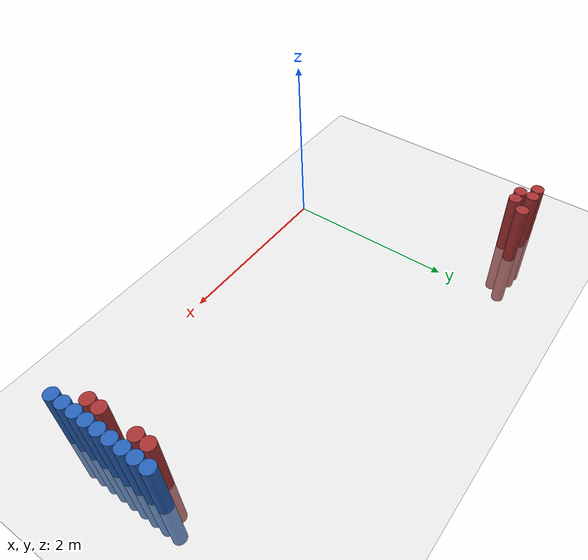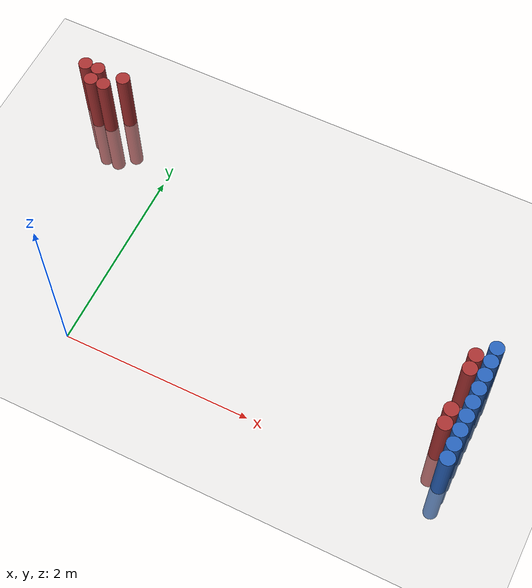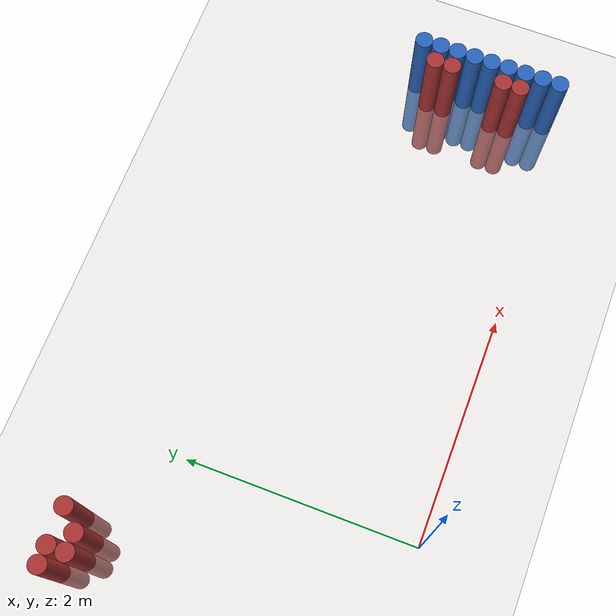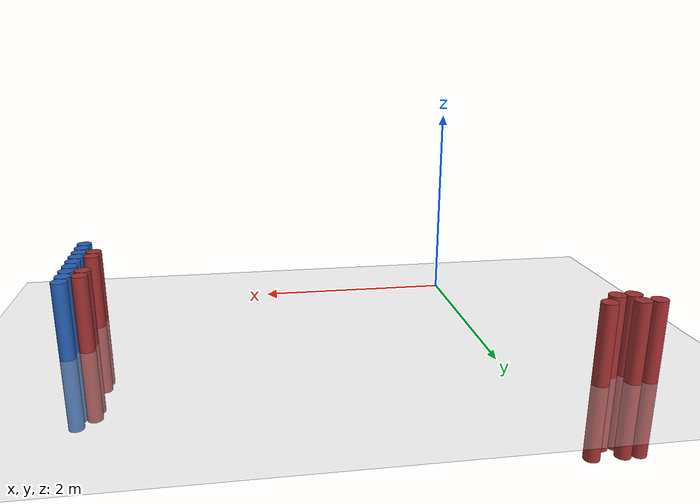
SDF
<sdf version="1.6">
 <world name="default">
  <model name="ground_plane">
   <static>1</static>
   <link name="link">
    <collision name="collision">
     <geometry><plane><normal>0 0 1</normal><size>100 100</size></plane></geometry>
     <surface><friction><ode><mu>100</mu><mu2>50</mu2></ode></friction></surface>
    </collision>
    <visual name="visual">
     <cast_shadows>0</cast_shadows>
     <geometry><plane><normal>0 0 1</normal><size>100 100</size></plane></geometry>
     <material>
      <script><uri>file://media/materials/scripts/gazebo.material</uri><name>Gazebo/Grey</name></script>
     </material>
    </visual>
   </link>
  </model>
  <model name="unit_cylinder_118">
   <static>1</static>
   <pose>3.925000 0.325000 0.000000 0.000000 0.000000 0.000000</pose>
   <link name="link">
    <inertial>
     <mass>1</mass>
     <inertia><ixx>0.145833</ixx><ixy>0</ixy><ixz>0</ixz><iyy>0.145833</iyy><iyz>0</iyz><izz>0.125</izz></inertia>
    </inertial>
    <collision name="collision">
     <geometry><cylinder><radius>0.075000</radius><length>1.5</length></cylinder></geometry>
    </collision>
    <visual name="visual">
     <geometry><cylinder><radius>0.075000</radius><length>1.5</length></cylinder></geometry>
     <material>
      <ambient>0.152000 0.379000 0.720000 1</ambient>
      <diffuse>0.152000 0.379000 0.720000 1</diffuse>
     </material>
     <material>
      <script><name>Gazebo/Grey</name><uri>file://media/materials/scripts/gazebo.material</uri></script>
     </material>
    </visual>
   </link>
  </model>
  <model name="unit_cylinder_120">
   <static>1</static>
   <pose>3.925000 0.475000 0.000000 0.000000 0.000000 0.000000</pose>
   <link name="link">
    <inertial>
     <mass>1</mass>
     <inertia><ixx>0.145833</ixx><ixy>0</ixy><ixz>0</ixz><iyy>0.145833</iyy><iyz>0</iyz><izz>0.125</izz></inertia>
    </inertial>
    <collision name="collision">
     <geometry><cylinder><radius>0.075000</radius><length>1.5</length></cylinder></geometry>
    </collision>
    <visual name="visual">
     <geometry><cylinder><radius>0.075000</radius><length>1.5</length></cylinder></geometry>
     <material>
      <ambient>0.152000 0.379000 0.720000 1</ambient>
      <diffuse>0.152000 0.379000 0.720000 1</diffuse>
     </material>
     <material>
      <script><name>Gazebo/Grey</name><uri>file://media/materials/scripts/gazebo.material</uri></script>
     </material>
    </visual>
   </link>
  </model>
  <model name="unit_cylinder_122">
   <static>1</static>
   <pose>3.925000 0.625000 0.000000 0.000000 0.000000 0.000000</pose>
   <link name="link">
    <inertial>
     <mass>1</mass>
     <inertia><ixx>0.145833</ixx><ixy>0</ixy><ixz>0</ixz><iyy>0.145833</iyy><iyz>0</iyz><izz>0.125</izz></inertia>
    </inertial>
    <collision name="collision">
     <geometry><cylinder><radius>0.075000</radius><length>1.5</length></cylinder></geometry>
    </collision>
    <visual name="visual">
     <geometry><cylinder><radius>0.075000</radius><length>1.5</length></cylinder></geometry>
     <material>
      <ambient>0.152000 0.379000 0.720000 1</ambient>
      <diffuse>0.152000 0.379000 0.720000 1</diffuse>
     </material>
     <material>
      <script><name>Gazebo/Grey</name><uri>file://media/materials/scripts/gazebo.material</uri></script>
     </material>
    </visual>
   </link>
  </model>
  <model name="unit_cylinder_124">
   <static>1</static>
   <pose>3.925000 0.775000 0.000000 0.000000 0.000000 0.000000</pose>
   <link name="link">
    <inertial>
     <mass>1</mass>
     <inertia><ixx>0.145833</ixx><ixy>0</ixy><ixz>0</ixz><iyy>0.145833</iyy><iyz>0</iyz><izz>0.125</izz></inertia>
    </inertial>
    <collision name="collision">
     <geometry><cylinder><radius>0.075000</radius><length>1.5</length></cylinder></geometry>
    </collision>
    <visual name="visual">
     <geometry><cylinder><radius>0.075000</radius><length>1.5</length></cylinder></geometry>
     <material>
      <ambient>0.152000 0.379000 0.720000 1</ambient>
      <diffuse>0.152000 0.379000 0.720000 1</diffuse>
     </material>
     <material>
      <script><name>Gazebo/Grey</name><uri>file://media/materials/scripts/gazebo.material</uri></script>
     </material>
    </visual>
   </link>
  </model>
  <model name="unit_cylinder_126">
   <static>1</static>
   <pose>3.925000 0.925000 0.000000 0.000000 0.000000 0.000000</pose>
   <link name="link">
    <inertial>
     <mass>1</mass>
     <inertia><ixx>0.145833</ixx><ixy>0</ixy><ixz>0</ixz><iyy>0.145833</iyy><iyz>0</iyz><izz>0.125</izz></inertia>
    </inertial>
    <collision name="collision">
     <geometry><cylinder><radius>0.075000</radius><length>1.5</length></cylinder></geometry>
    </collision>
    <visual name="visual">
     <geometry><cylinder><radius>0.075000</radius><length>1.5</length></cylinder></geometry>
     <material>
      <ambient>0.152000 0.379000 0.720000 1</ambient>
      <diffuse>0.152000 0.379000 0.720000 1</diffuse>
     </material>
     <material>
      <script><name>Gazebo/Grey</name><uri>file://media/materials/scripts/gazebo.material</uri></script>
     </material>
    </visual>
   </link>
  </model>
  <model name="unit_cylinder_128">
   <static>1</static>
   <pose>3.925000 1.075000 0.000000 0.000000 0.000000 0.000000</pose>
   <link name="link">
    <inertial>
     <mass>1</mass>
     <inertia><ixx>0.145833</ixx><ixy>0</ixy><ixz>0</ixz><iyy>0.145833</iyy><iyz>0</iyz><izz>0.125</izz></inertia>
    </inertial>
    <collision name="collision">
     <geometry><cylinder><radius>0.075000</radius><length>1.5</length></cylinder></geometry>
    </collision>
    <visual name="visual">
     <geometry><cylinder><radius>0.075000</radius><length>1.5</length></cylinder></geometry>
     <material>
      <ambient>0.152000 0.379000 0.720000 1</ambient>
      <diffuse>0.152000 0.379000 0.720000 1</diffuse>
     </material>
     <material>
      <script><name>Gazebo/Grey</name><uri>file://media/materials/scripts/gazebo.material</uri></script>
     </material>
    </visual>
   </link>
  </model>
  <model name="unit_cylinder_130">
   <static>1</static>
   <pose>3.925000 1.225000 0.000000 0.000000 0.000000 0.000000</pose>
   <link name="link">
    <inertial>
     <mass>1</mass>
     <inertia><ixx>0.145833</ixx><ixy>0</ixy><ixz>0</ixz><iyy>0.145833</iyy><iyz>0</iyz><izz>0.125</izz></inertia>
    </inertial>
    <collision name="collision">
     <geometry><cylinder><radius>0.075000</radius><length>1.5</length></cylinder></geometry>
    </collision>
    <visual name="visual">
     <geometry><cylinder><radius>0.075000</radius><length>1.5</length></cylinder></geometry>
     <material>
      <ambient>0.152000 0.379000 0.720000 1</ambient>
      <diffuse>0.152000 0.379000 0.720000 1</diffuse>
     </material>
     <material>
      <script><name>Gazebo/Grey</name><uri>file://media/materials/scripts/gazebo.material</uri></script>
     </material>
    </visual>
   </link>
  </model>
  <model name="unit_cylinder_132">
   <static>1</static>
   <pose>3.925000 1.375000 0.000000 0.000000 0.000000 0.000000</pose>
   <link name="link">
    <inertial>
     <mass>1</mass>
     <inertia><ixx>0.145833</ixx><ixy>0</ixy><ixz>0</ixz><iyy>0.145833</iyy><iyz>0</iyz><izz>0.125</izz></inertia>
    </inertial>
    <collision name="collision">
     <geometry><cylinder><radius>0.075000</radius><length>1.5</length></cylinder></geometry>
    </collision>
    <visual name="visual">
     <geometry><cylinder><radius>0.075000</radius><length>1.5</length></cylinder></geometry>
     <material>
      <ambient>0.152000 0.379000 0.720000 1</ambient>
      <diffuse>0.152000 0.379000 0.720000 1</diffuse>
     </material>
     <material>
      <script><name>Gazebo/Grey</name><uri>file://media/materials/scripts/gazebo.material</uri></script>
     </material>
    </visual>
   </link>
  </model>
  <model name="unit_cylinder_284">
   <static>1</static>
   <pose>-1.175000 2.575000 0.000000 0.000000 0.000000 0.000000</pose>
   <link name="link">
    <inertial>
     <mass>1</mass>
     <inertia><ixx>0.145833</ixx><ixy>0</ixy><ixz>0</ixz><iyy>0.145833</iyy><iyz>0</iyz><izz>0.125</izz></inertia>
    </inertial>
    <collision name="collision">
     <geometry><cylinder><radius>0.075000</radius><length>1.5</length></cylinder></geometry>
    </collision>
    <visual name="visual">
     <geometry><cylinder><radius>0.075000</radius><length>1.5</length></cylinder></geometry>
     <material>
      <ambient>0.648000 0.192000 0.192000 1</ambient>
      <diffuse>0.648000 0.192000 0.192000 1</diffuse>
     </material>
     <material>
      <script><name>Gazebo/Grey</name><uri>file://media/materials/scripts/gazebo.material</uri></script>
     </material>
    </visual>
   </link>
  </model>
  <model name="unit_cylinder_285">
   <static>1</static>
   <pose>-1.025000 2.425000 0.000000 0.000000 0.000000 0.000000</pose>
   <link name="link">
    <inertial>
     <mass>1</mass>
     <inertia><ixx>0.145833</ixx><ixy>0</ixy><ixz>0</ixz><iyy>0.145833</iyy><iyz>0</iyz><izz>0.125</izz></inertia>
    </inertial>
    <collision name="collision">
     <geometry><cylinder><radius>0.075000</radius><length>1.5</length></cylinder></geometry>
    </collision>
    <visual name="visual">
     <geometry><cylinder><radius>0.075000</radius><length>1.5</length></cylinder></geometry>
     <material>
      <ambient>0.648000 0.192000 0.192000 1</ambient>
      <diffuse>0.648000 0.192000 0.192000 1</diffuse>
     </material>
     <material>
      <script><name>Gazebo/Grey</name><uri>file://media/materials/scripts/gazebo.material</uri></script>
     </material>
    </visual>
   </link>
  </model>
  <model name="unit_cylinder_286">
   <static>1</static>
   <pose>-1.025000 2.575000 0.000000 0.000000 0.000000 0.000000</pose>
   <link name="link">
    <inertial>
     <mass>1</mass>
     <inertia><ixx>0.145833</ixx><ixy>0</ixy><ixz>0</ixz><iyy>0.145833</iyy><iyz>0</iyz><izz>0.125</izz></inertia>
    </inertial>
    <collision name="collision">
     <geometry><cylinder><radius>0.075000</radius><length>1.5</length></cylinder></geometry>
    </collision>
    <visual name="visual">
     <geometry><cylinder><radius>0.075000</radius><length>1.5</length></cylinder></geometry>
     <material>
      <ambient>0.648000 0.192000 0.192000 1</ambient>
      <diffuse>0.648000 0.192000 0.192000 1</diffuse>
     </material>
     <material>
      <script><name>Gazebo/Grey</name><uri>file://media/materials/scripts/gazebo.material</uri></script>
     </material>
    </visual>
   </link>
  </model>
  <model name="unit_cylinder_287">
   <static>1</static>
   <pose>-0.875000 2.425000 0.000000 0.000000 0.000000 0.000000</pose>
   <link name="link">
    <inertial>
     <mass>1</mass>
     <inertia><ixx>0.145833</ixx><ixy>0</ixy><ixz>0</ixz><iyy>0.145833</iyy><iyz>0</iyz><izz>0.125</izz></inertia>
    </inertial>
    <collision name="collision">
     <geometry><cylinder><radius>0.075000</radius><length>1.5</length></cylinder></geometry>
    </collision>
    <visual name="visual">
     <geometry><cylinder><radius>0.075000</radius><length>1.5</length></cylinder></geometry>
     <material>
      <ambient>0.648000 0.192000 0.192000 1</ambient>
      <diffuse>0.648000 0.192000 0.192000 1</diffuse>
     </material>
     <material>
      <script><name>Gazebo/Grey</name><uri>file://media/materials/scripts/gazebo.material</uri></script>
     </material>
    </visual>
   </link>
  </model>
  <model name="unit_cylinder_288">
   <static>1</static>
   <pose>-0.725000 2.575000 0.000000 0.000000 0.000000 0.000000</pose>
   <link name="link">
    <inertial>
     <mass>1</mass>
     <inertia><ixx>0.145833</ixx><ixy>0</ixy><ixz>0</ixz><iyy>0.145833</iyy><iyz>0</iyz><izz>0.125</izz></inertia>
    </inertial>
    <collision name="collision">
     <geometry><cylinder><radius>0.075000</radius><length>1.5</length></cylinder></geometry>
    </collision>
    <visual name="visual">
     <geometry><cylinder><radius>0.075000</radius><length>1.5</length></cylinder></geometry>
     <material>
      <ambient>0.648000 0.192000 0.192000 1</ambient>
      <diffuse>0.648000 0.192000 0.192000 1</diffuse>
     </material>
     <material>
      <script><name>Gazebo/Grey</name><uri>file://media/materials/scripts/gazebo.material</uri></script>
     </material>
    </visual>
   </link>
  </model>
  <model name="unit_cylinder_310">
   <static>1</static>
   <pose>3.775000 0.475000 0.000000 0.000000 0.000000 0.000000</pose>
   <link name="link">
    <inertial>
     <mass>1</mass>
     <inertia><ixx>0.145833</ixx><ixy>0</ixy><ixz>0</ixz><iyy>0.145833</iyy><iyz>0</iyz><izz>0.125</izz></inertia>
    </inertial>
    <collision name="collision">
     <geometry><cylinder><radius>0.075000</radius><length>1.5</length></cylinder></geometry>
    </collision>
    <visual name="visual">
     <geometry><cylinder><radius>0.075000</radius><length>1.5</length></cylinder></geometry>
     <material>
      <ambient>0.648000 0.192000 0.192000 1</ambient>
      <diffuse>0.648000 0.192000 0.192000 1</diffuse>
     </material>
     <material>
      <script><name>Gazebo/Grey</name><uri>file://media/materials/scripts/gazebo.material</uri></script>
     </material>
    </visual>
   </link>
  </model>
  <model name="unit_cylinder_311">
   <static>1</static>
   <pose>3.775000 0.625000 0.000000 0.000000 0.000000 0.000000</pose>
   <link name="link">
    <inertial>
     <mass>1</mass>
     <inertia><ixx>0.145833</ixx><ixy>0</ixy><ixz>0</ixz><iyy>0.145833</iyy><iyz>0</iyz><izz>0.125</izz></inertia>
    </inertial>
    <collision name="collision">
     <geometry><cylinder><radius>0.075000</radius><length>1.5</length></cylinder></geometry>
    </collision>
    <visual name="visual">
     <geometry><cylinder><radius>0.075000</radius><length>1.5</length></cylinder></geometry>
     <material>
      <ambient>0.648000 0.192000 0.192000 1</ambient>
      <diffuse>0.648000 0.192000 0.192000 1</diffuse>
     </material>
     <material>
      <script><name>Gazebo/Grey</name><uri>file://media/materials/scripts/gazebo.material</uri></script>
     </material>
    </visual>
   </link>
  </model>
  <model name="unit_cylinder_312">
   <static>1</static>
   <pose>3.775000 1.075000 0.000000 0.000000 0.000000 0.000000</pose>
   <link name="link">
    <inertial>
     <mass>1</mass>
     <inertia><ixx>0.145833</ixx><ixy>0</ixy><ixz>0</ixz><iyy>0.145833</iyy><iyz>0</iyz><izz>0.125</izz></inertia>
    </inertial>
    <collision name="collision">
     <geometry><cylinder><radius>0.075000</radius><length>1.5</length></cylinder></geometry>
    </collision>
    <visual name="visual">
     <geometry><cylinder><radius>0.075000</radius><length>1.5</length></cylinder></geometry>
     <material>
      <ambient>0.648000 0.192000 0.192000 1</ambient>
      <diffuse>0.648000 0.192000 0.192000 1</diffuse>
     </material>
     <material>
      <script><name>Gazebo/Grey</name><uri>file://media/materials/scripts/gazebo.material</uri></script>
     </material>
    </visual>
   </link>
  </model>
  <model name="unit_cylinder_313">
   <static>1</static>
   <pose>3.775000 1.225000 0.000000 0.000000 0.000000 0.000000</pose>
   <link name="link">
    <inertial>
     <mass>1</mass>
     <inertia><ixx>0.145833</ixx><ixy>0</ixy><ixz>0</ixz><iyy>0.145833</iyy><iyz>0</iyz><izz>0.125</izz></inertia>
    </inertial>
    <collision name="collision">
     <geometry><cylinder><radius>0.075000</radius><length>1.5</length></cylinder></geometry>
    </collision>
    <visual name="visual">
     <geometry><cylinder><radius>0.075000</radius><length>1.5</length></cylinder></geometry>
     <material>
      <ambient>0.648000 0.192000 0.192000 1</ambient>
      <diffuse>0.648000 0.192000 0.192000 1</diffuse>
     </material>
     <material>
      <script><name>Gazebo/Grey</name><uri>file://media/materials/scripts/gazebo.material</uri></script>
     </material>
    </visual>
   </link>
  </model>
  <model name="unit_cylinder_328">
   <static>1</static>
   <pose>3.925000 0.175000 0.000000 0.000000 0.000000 0.000000</pose>
   <link name="link">
    <inertial>
     <mass>1</mass>
     <inertia><ixx>0.145833</ixx><ixy>0</ixy><ixz>0</ixz><iyy>0.145833</iyy><iyz>0</iyz><izz>0.125</izz></inertia>
    </inertial>
    <collision name="collision">
     <geometry><cylinder><radius>0.075000</radius><length>1.5</length></cylinder></geometry>
    </collision>
    <visual name="visual">
     <geometry><cylinder><radius>0.075000</radius><length>1.5</length></cylinder></geometry>
     <material>
      <ambient>0.152000 0.379000 0.720000 1</ambient>
      <diffuse>0.152000 0.379000 0.720000 1</diffuse>
     </material>
     <material>
      <script><name>Gazebo/Grey</name><uri>file://media/materials/scripts/gazebo.material</uri></script>
     </material>
    </visual>
   </link>
  </model>
  <model name="unit_cylinder_329">
   <static>1</static>
   <pose>3.925000 0.325000 0.000000 0.000000 0.000000 0.000000</pose>
   <link name="link">
    <inertial>
     <mass>1</mass>
     <inertia><ixx>0.145833</ixx><ixy>0</ixy><ixz>0</ixz><iyy>0.145833</iyy><iyz>0</iyz><izz>0.125</izz></inertia>
    </inertial>
    <collision name="collision">
     <geometry><cylinder><radius>0.075000</radius><length>1.5</length></cylinder></geometry>
    </collision>
    <visual name="visual">
     <geometry><cylinder><radius>0.075000</radius><length>1.5</length></cylinder></geometry>
     <material>
      <ambient>0.152000 0.379000 0.720000 1</ambient>
      <diffuse>0.152000 0.379000 0.720000 1</diffuse>
     </material>
     <material>
      <script><name>Gazebo/Grey</name><uri>file://media/materials/scripts/gazebo.material</uri></script>
     </material>
    </visual>
   </link>
  </model>
  <model name="unit_cylinder_330">
   <static>1</static>
   <pose>3.925000 0.475000 0.000000 0.000000 0.000000 0.000000</pose>
   <link name="link">
    <inertial>
     <mass>1</mass>
     <inertia><ixx>0.145833</ixx><ixy>0</ixy><ixz>0</ixz><iyy>0.145833</iyy><iyz>0</iyz><izz>0.125</izz></inertia>
    </inertial>
    <collision name="collision">
     <geometry><cylinder><radius>0.075000</radius><length>1.5</length></cylinder></geometry>
    </collision>
    <visual name="visual">
     <geometry><cylinder><radius>0.075000</radius><length>1.5</length></cylinder></geometry>
     <material>
      <ambient>0.152000 0.379000 0.720000 1</ambient>
      <diffuse>0.152000 0.379000 0.720000 1</diffuse>
     </material>
     <material>
      <script><name>Gazebo/Grey</name><uri>file://media/materials/scripts/gazebo.material</uri></script>
     </material>
    </visual>
   </link>
  </model>
  <model name="unit_cylinder_331">
   <static>1</static>
   <pose>3.925000 0.625000 0.000000 0.000000 0.000000 0.000000</pose>
   <link name="link">
    <inertial>
     <mass>1</mass>
     <inertia><ixx>0.145833</ixx><ixy>0</ixy><ixz>0</ixz><iyy>0.145833</iyy><iyz>0</iyz><izz>0.125</izz></inertia>
    </inertial>
    <collision name="collision">
     <geometry><cylinder><radius>0.075000</radius><length>1.5</length></cylinder></geometry>
    </collision>
    <visual name="visual">
     <geometry><cylinder><radius>0.075000</radius><length>1.5</length></cylinder></geometry>
     <material>
      <ambient>0.152000 0.379000 0.720000 1</ambient>
      <diffuse>0.152000 0.379000 0.720000 1</diffuse>
     </material>
     <material>
      <script><name>Gazebo/Grey</name><uri>file://media/materials/scripts/gazebo.material</uri></script>
     </material>
    </visual>
   </link>
  </model>
  <model name="unit_cylinder_332">
   <static>1</static>
   <pose>3.925000 0.775000 0.000000 0.000000 0.000000 0.000000</pose>
   <link name="link">
    <inertial>
     <mass>1</mass>
     <inertia><ixx>0.145833</ixx><ixy>0</ixy><ixz>0</ixz><iyy>0.145833</iyy><iyz>0</iyz><izz>0.125</izz></inertia>
    </inertial>
    <collision name="collision">
     <geometry><cylinder><radius>0.075000</radius><length>1.5</length></cylinder></geometry>
    </collision>
    <visual name="visual">
     <geometry><cylinder><radius>0.075000</radius><length>1.5</length></cylinder></geometry>
     <material>
      <ambient>0.152000 0.379000 0.720000 1</ambient>
      <diffuse>0.152000 0.379000 0.720000 1</diffuse>
     </material>
     <material>
      <script><name>Gazebo/Grey</name><uri>file://media/materials/scripts/gazebo.material</uri></script>
     </material>
    </visual>
   </link>
  </model>
  <model name="unit_cylinder_333">
   <static>1</static>
   <pose>3.925000 0.925000 0.000000 0.000000 0.000000 0.000000</pose>
   <link name="link">
    <inertial>
     <mass>1</mass>
     <inertia><ixx>0.145833</ixx><ixy>0</ixy><ixz>0</ixz><iyy>0.145833</iyy><iyz>0</iyz><izz>0.125</izz></inertia>
    </inertial>
    <collision name="collision">
     <geometry><cylinder><radius>0.075000</radius><length>1.5</length></cylinder></geometry>
    </collision>
    <visual name="visual">
     <geometry><cylinder><radius>0.075000</radius><length>1.5</length></cylinder></geometry>
     <material>
      <ambient>0.152000 0.379000 0.720000 1</ambient>
      <diffuse>0.152000 0.379000 0.720000 1</diffuse>
     </material>
     <material>
      <script><name>Gazebo/Grey</name><uri>file://media/materials/scripts/gazebo.material</uri></script>
     </material>
    </visual>
   </link>
  </model>
  <model name="unit_cylinder_334">
   <static>1</static>
   <pose>3.925000 1.075000 0.000000 0.000000 0.000000 0.000000</pose>
   <link name="link">
    <inertial>
     <mass>1</mass>
     <inertia><ixx>0.145833</ixx><ixy>0</ixy><ixz>0</ixz><iyy>0.145833</iyy><iyz>0</iyz><izz>0.125</izz></inertia>
    </inertial>
    <collision name="collision">
     <geometry><cylinder><radius>0.075000</radius><length>1.5</length></cylinder></geometry>
    </collision>
    <visual name="visual">
     <geometry><cylinder><radius>0.075000</radius><length>1.5</length></cylinder></geometry>
     <material>
      <ambient>0.152000 0.379000 0.720000 1</ambient>
      <diffuse>0.152000 0.379000 0.720000 1</diffuse>
     </material>
     <material>
      <script><name>Gazebo/Grey</name><uri>file://media/materials/scripts/gazebo.material</uri></script>
     </material>
    </visual>
   </link>
  </model>
  <model name="unit_cylinder_335">
   <static>1</static>
   <pose>3.925000 1.225000 0.000000 0.000000 0.000000 0.000000</pose>
   <link name="link">
    <inertial>
     <mass>1</mass>
     <inertia><ixx>0.145833</ixx><ixy>0</ixy><ixz>0</ixz><iyy>0.145833</iyy><iyz>0</iyz><izz>0.125</izz></inertia>
    </inertial>
    <collision name="collision">
     <geometry><cylinder><radius>0.075000</radius><length>1.5</length></cylinder></geometry>
    </collision>
    <visual name="visual">
     <geometry><cylinder><radius>0.075000</radius><length>1.5</length></cylinder></geometry>
     <material>
      <ambient>0.152000 0.379000 0.720000 1</ambient>
      <diffuse>0.152000 0.379000 0.720000 1</diffuse>
     </material>
     <material>
      <script><name>Gazebo/Grey</name><uri>file://media/materials/scripts/gazebo.material</uri></script>
     </material>
    </visual>
   </link>
  </model>
  <model name="unit_cylinder_336">
   <static>1</static>
   <pose>3.925000 1.375000 0.000000 0.000000 0.000000 0.000000</pose>
   <link name="link">
    <inertial>
     <mass>1</mass>
     <inertia><ixx>0.145833</ixx><ixy>0</ixy><ixz>0</ixz><iyy>0.145833</iyy><iyz>0</iyz><izz>0.125</izz></inertia>
    </inertial>
    <collision name="collision">
     <geometry><cylinder><radius>0.075000</radius><length>1.5</length></cylinder></geometry>
    </collision>
    <visual name="visual">
     <geometry><cylinder><radius>0.075000</radius><length>1.5</length></cylinder></geometry>
     <material>
      <ambient>0.152000 0.379000 0.720000 1</ambient>
      <diffuse>0.152000 0.379000 0.720000 1</diffuse>
     </material>
     <material>
      <script><name>Gazebo/Grey</name><uri>file://media/materials/scripts/gazebo.material</uri></script>
     </material>
    </visual>
   </link>
  </model>
 </world>
</sdf>
